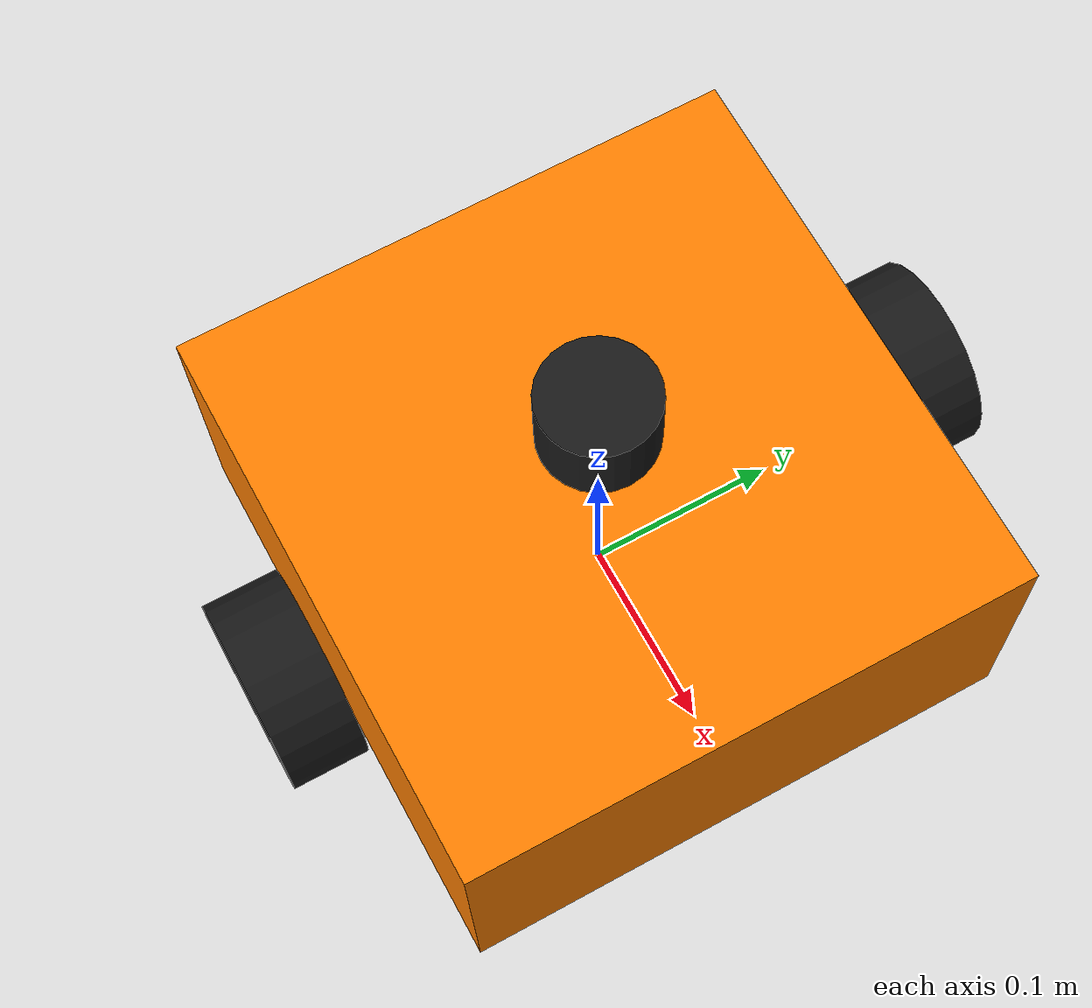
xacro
<?xml version="1.0"?>
<robot name="diff_bot" xmlns:xacro="http://www.ros.org/wiki/xacro">

  <!-- ===================== Properties ===================== -->
  <xacro:property name="chassis_length" value="0.30"/>
  <xacro:property name="chassis_width"  value="0.30"/>
  <xacro:property name="chassis_height" value="0.15"/>
  <xacro:property name="wheel_radius"   value="0.05"/>
  <xacro:property name="wheel_width"    value="0.04"/>
  <xacro:property name="wheel_separation" value="0.35"/>

  <!-- ===================== Materials (RViz) ===================== -->
  <material name="orange"><color rgba="1.0 0.5 0.0 1"/></material>
  <material name="black"><color rgba="0.1 0.1 0.1 1"/></material>
  <material name="grey"><color rgba="0.6 0.6 0.6 1"/></material>

  <!-- ===================== base_footprint ===================== -->
  <link name="base_footprint"/>

  <joint name="base_footprint_joint" type="fixed">
    <parent link="base_footprint"/>
    <child link="base_link"/>
    <origin xyz="0 0 ${wheel_radius}" rpy="0 0 0"/>
  </joint>

  <!-- ===================== base_link (chassis) ===================== -->
  <link name="base_link">
    <visual>
      <origin xyz="0 0 0" rpy="0 0 0"/>
      <geometry><box size="${chassis_length} ${chassis_width} ${chassis_height}"/></geometry>
      <material name="orange"/>
    </visual>
    <collision>
      <origin xyz="0 0 0" rpy="0 0 0"/>
      <geometry><box size="${chassis_length} ${chassis_width} ${chassis_height}"/></geometry>
    </collision>
    <inertial>
      <mass value="5.0"/>
      <origin xyz="0 0 0"/>
      <inertia ixx="0.05" ixy="0" ixz="0" iyy="0.06" iyz="0" izz="0.08"/>
    </inertial>
  </link>

  <gazebo reference="base_link">
    <material>Gazebo/Orange</material>
  </gazebo>

  <!-- ===================== Right wheel ===================== -->
  <joint name="right_wheel_joint" type="continuous">
    <parent link="base_link"/>
    <child link="right_wheel"/>
    <origin xyz="0 ${-wheel_separation/2} 0" rpy="${-pi/2} 0 0"/>
    <axis xyz="0 0 1"/>
  </joint>

  <link name="right_wheel">
    <visual>
      <geometry><cylinder radius="${wheel_radius}" length="${wheel_width}"/></geometry>
      <material name="black"/>
    </visual>
    <collision>
      <geometry><cylinder radius="${wheel_radius}" length="${wheel_width}"/></geometry>
    </collision>
    <inertial>
      <mass value="0.5"/>
      <inertia ixx="0.001" ixy="0" ixz="0" iyy="0.001" iyz="0" izz="0.001"/>
    </inertial>
  </link>

  <gazebo reference="right_wheel">
    <material>Gazebo/Black</material>
  </gazebo>

  <!-- ===================== Left wheel ===================== -->
  <joint name="left_wheel_joint" type="continuous">
    <parent link="base_link"/>
    <child link="left_wheel"/>
    <origin xyz="0 ${wheel_separation/2} 0" rpy="${-pi/2} 0 0"/>
    <axis xyz="0 0 1"/>
  </joint>

  <link name="left_wheel">
    <visual>
      <geometry><cylinder radius="${wheel_radius}" length="${wheel_width}"/></geometry>
      <material name="black"/>
    </visual>
    <collision>
      <geometry><cylinder radius="${wheel_radius}" length="${wheel_width}"/></geometry>
    </collision>
    <inertial>
      <mass value="0.5"/>
      <inertia ixx="0.001" ixy="0" ixz="0" iyy="0.001" iyz="0" izz="0.001"/>
    </inertial>
  </link>

  <gazebo reference="left_wheel">
    <material>Gazebo/Black</material>
  </gazebo>

  <!-- ===================== Caster wheel (support) ===================== -->
  <joint name="caster_joint" type="fixed">
    <parent link="base_link"/>
    <child link="caster_wheel"/>
    <origin xyz="${chassis_length/2 - 0.03} 0 ${-wheel_radius/2}" rpy="0 0 0"/>
  </joint>

  <link name="caster_wheel">
    <visual>
      <geometry><sphere radius="${wheel_radius/2}"/></geometry>
      <material name="black"/>
    </visual>
    <collision>
      <geometry><sphere radius="${wheel_radius/2}"/></geometry>
    </collision>
    <inertial>
      <mass value="0.1"/>
      <inertia ixx="0.0001" ixy="0" ixz="0" iyy="0.0001" iyz="0" izz="0.0001"/>
    </inertial>
  </link>

  <gazebo reference="caster_wheel">
    <material>Gazebo/Black</material>
    <mu1>0.01</mu1>
    <mu2>0.01</mu2>
  </gazebo>

  <!-- ===================== IMU link ===================== -->
  <joint name="imu_joint" type="fixed">
    <parent link="base_link"/>
    <child link="imu_link"/>
    <origin xyz="0 0 0.05" rpy="0 0 0"/>
  </joint>

  <link name="imu_link">
    <visual>
      <geometry><box size="0.02 0.02 0.02"/></geometry>
      <material name="grey"/>
    </visual>
    <inertial>
      <mass value="0.01"/>
      <inertia ixx="0.00001" ixy="0" ixz="0" iyy="0.00001" iyz="0" izz="0.00001"/>
    </inertial>
  </link>

  <!-- ===================== LiDAR link (laser_frame) ===================== -->
  <joint name="laser_joint" type="fixed">
    <parent link="base_link"/>
    <child link="laser_frame"/>
    <origin xyz="0 0 ${chassis_height/2 + 0.05}" rpy="0 0 0"/>
  </joint>

  <link name="laser_frame">
    <visual>
      <geometry><cylinder radius="0.03" length="0.04"/></geometry>
      <material name="black"/>
    </visual>
    <collision>
      <geometry><cylinder radius="0.03" length="0.04"/></geometry>
    </collision>
    <inertial>
      <mass value="0.05"/>
      <inertia ixx="0.00001" ixy="0" ixz="0" iyy="0.00001" iyz="0" izz="0.00001"/>
    </inertial>
  </link>

  <gazebo reference="laser_frame">
    <material>Gazebo/Black</material>
  </gazebo>

  <!-- ===================== Gazebo plugins & sensors ===================== -->
  <xacro:include filename="$(find diff_drive_robot)/urdf/robot.gazebo" />

</robot>
